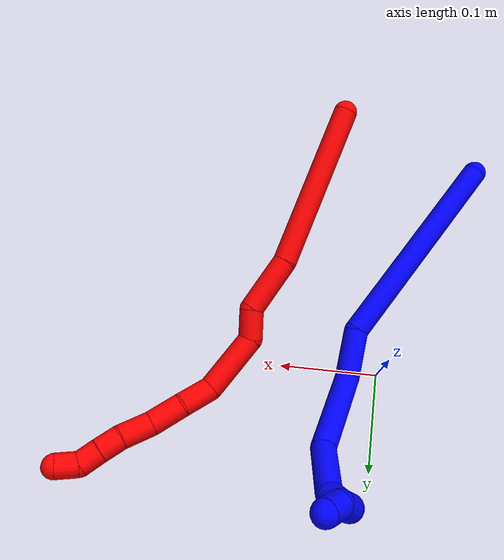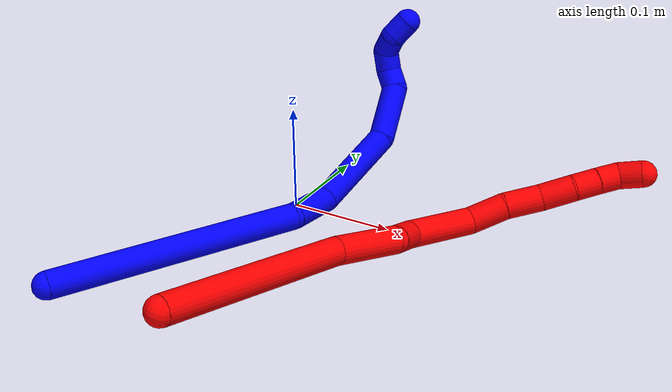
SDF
<sdf version="1.7">
 <world name="default">
  <plugin name="TubeGeneratorPlugin" filename="libtube_generator_plugin.so"/>
  <model name="photoneo_s_sensor">
   <static>1</static>
   <pose>0 0 2 1.57079 1.57079 3.14159</pose>
   <link name="link">
    <inertial><mass>0.1</mass></inertial>
    <sensor name="sensor" type="depth">
     <update_rate>30</update_rate>
     <camera>
      <horizontal_fov>1.22</horizontal_fov>
      <image><width>1920</width><height>1200</height><format>B8G8R8</format></image>
      <clip><near>0.1</near><far>4</far></clip>
      <depth_camera><output>points</output></depth_camera>
     </camera>
     <plugin name="camera_plugin" filename="libgazebo_ros_depth_camera.so">
      <baseline>0.2</baseline>
      <alwaysOn>1</alwaysOn>
      <updateRate>0.0</updateRate>
      <cameraName>camera_ir</cameraName>
      <imageTopicName>/camera/color/image_raw</imageTopicName>
      <cameraInfoTopicName>/camera/color/camera_info</cameraInfoTopicName>
      <depthImageTopicName>/camera/depth/image_raw</depthImageTopicName>
      <depthImageCameraInfoTopicName>/camera/depth/camera_info</depthImageCameraInfoTopicName>
      <pointCloudTopicName>/camera/depth/points</pointCloudTopicName>
      <frameName>fr_optical</frameName>
      <pointCloudCutoff>0.1</pointCloudCutoff>
      <pointCloudCutoffMax>2.0</pointCloudCutoffMax>
      <distortionK1>0</distortionK1>
      <distortionK2>0</distortionK2>
      <distortionK3>0</distortionK3>
      <distortionT1>0</distortionT1>
      <distortionT2>0</distortionT2>
      <CxPrime>0</CxPrime>
      <Cx>0</Cx>
      <Cy>0</Cy>
      <focalLength>0</focalLength>
      <hackBaseline>0</hackBaseline>
     </plugin>
    </sensor>
   </link>
  </model>
  <gravity>0 0 -9.8</gravity>
  <magnetic_field>6e-06 2.3e-05 -4.2e-05</magnetic_field>
  <atmosphere type="adiabatic"/>
  <physics name="default_physics" default="0" type="ode">
   <max_step_size>0.003</max_step_size>
   <real_time_factor>1</real_time_factor>
   <real_time_update_rate>1000</real_time_update_rate>
   <max_contacts>10000</max_contacts>
   <ode>
    <solver>
     <type>quick</type>
     <iters>100</iters>
     <sor>1.3</sor>
     <use_dynamic_moi_rescaling>0</use_dynamic_moi_rescaling>
    </solver>
    <constraints>
     <contact_max_correcting_vel>0</contact_max_correcting_vel>
     <contact_surface_layer>0.001</contact_surface_layer>
     <cfm>0</cfm>
     <erp>0.2</erp>
    </constraints>
   </ode>
  </physics>
  <scene><ambient>0.4 0.4 0.4 1</ambient><background>0.7 0.7 0.7 1</background><shadows>0</shadows></scene>
  <audio><device>default</device></audio>
  <spherical_coordinates>
   <surface_model>EARTH_WGS84</surface_model>
   <latitude_deg>0</latitude_deg>
   <longitude_deg>0</longitude_deg>
   <elevation>0</elevation>
   <heading_deg>0</heading_deg>
  </spherical_coordinates>
  <model name="bin">
   <static>1</static>
   <link name="bottom">
    <collision name="collision-bottom">
     <pose>0 0 -0.01 0 -0 0</pose>
     <geometry><box><size>0.8 0.6 0.02</size></box></geometry>
     <surface>
      <friction><ode><mu>100</mu><mu2>100</mu2></ode></friction>
      <contact><collide_bitmask>65535</collide_bitmask></contact>
     </surface>
    </collision>
   </link>
   <link name="west_wall">
    <collision name="collision-west_wall">
     <pose>-0.41 0 0.1 0 -0 0</pose>
     <geometry><box><size>0.02 0.6 0.2</size></box></geometry>
     <surface>
      <friction><ode><mu>100</mu><mu2>100</mu2></ode></friction>
      <contact><collide_bitmask>65535</collide_bitmask></contact>
     </surface>
    </collision>
   </link>
   <link name="east_wall">
    <collision name="collision-east_wall">
     <pose>0.41 0 0.1 0 -0 0</pose>
     <geometry><box><size>0.02 0.6 0.2</size></box></geometry>
     <surface>
      <friction><ode><mu>100</mu><mu2>100</mu2></ode></friction>
      <contact><collide_bitmask>65535</collide_bitmask></contact>
     </surface>
    </collision>
   </link>
   <link name="south_wall">
    <collision name="collision-south_wall">
     <pose>0 -0.31 0.1 0 -0 0</pose>
     <geometry><box><size>0.8 0.02 0.2</size></box></geometry>
     <surface>
      <friction><ode><mu>100</mu><mu2>100</mu2></ode></friction>
      <contact><collide_bitmask>65535</collide_bitmask></contact>
     </surface>
    </collision>
   </link>
   <link name="north_wall">
    <collision name="collision-north_wall">
     <pose>0 0.31 0.1 0 -0 0</pose>
     <geometry><box><size>0.8 0.02 0.2</size></box></geometry>
     <surface>
      <friction><ode><mu>100</mu><mu2>100</mu2></ode></friction>
      <contact><collide_bitmask>65535</collide_bitmask></contact>
     </surface>
    </collision>
   </link>
  </model>
  <model name="1">
   <static>0</static>
   <link name="1">
    <collision name="collision-cylinder-e_1_1_4">
     <pose>0.076165 0.053523 0.064933 -0.689371 0.735634 -0.274952</pose>
     <geometry><cylinder><radius>0.0125</radius><length>0.226999</length></cylinder></geometry>
     <surface>
      <friction><ode><mu>1.16</mu><mu2>1.16</mu2><slip1>0</slip1><slip2>0</slip2></ode></friction>
      <contact><ode><kp>1e+06</kp><kd>1</kd><max_vel>0</max_vel><min_depth>0.001</min_depth></ode></contact>
     </surface>
    </collision>
    <visual name="visual-cylinder-e_1_1_4">
     <pose>0.076165 0.053523 0.064933 -0.689371 0.735634 -0.274952</pose>
     <geometry><cylinder><radius>0.0125</radius><length>0.226999</length></cylinder></geometry>
     <material><ambient>0 0 1 1</ambient></material>
    </visual>
    <collision name="collision-cylinder-e_2_4_5">
     <pose>0.172823 0.120783 0.133889 -1.28595 0.961135 -0.744703</pose>
     <geometry><cylinder><radius>0.0125</radius><length>0.049994</length></cylinder></geometry>
     <surface>
      <friction><ode><mu>1.16</mu><mu2>1.16</mu2><slip1>0</slip1><slip2>0</slip2></ode></friction>
      <contact><ode><kp>1e+06</kp><kd>1</kd><max_vel>0</max_vel><min_depth>0.001</min_depth></ode></contact>
     </surface>
    </collision>
    <visual name="visual-cylinder-e_2_4_5">
     <pose>0.172823 0.120783 0.133889 -1.28595 0.961135 -0.744703</pose>
     <geometry><cylinder><radius>0.0125</radius><length>0.049994</length></cylinder></geometry>
     <material><ambient>0 0 1 1</ambient></material>
    </visual>
    <collision name="collision-cylinder-e_3_5_6">
     <pose>0.210866 0.171202 0.15242 -1.19415 0.41859 -0.286824</pose>
     <geometry><cylinder><radius>0.0125</radius><length>0.086351</length></cylinder></geometry>
     <surface>
      <friction><ode><mu>1.16</mu><mu2>1.16</mu2><slip1>0</slip1><slip2>0</slip2></ode></friction>
      <contact><ode><kp>1e+06</kp><kd>1</kd><max_vel>0</max_vel><min_depth>0.001</min_depth></ode></contact>
     </surface>
    </collision>
    <visual name="visual-cylinder-e_3_5_6">
     <pose>0.210866 0.171202 0.15242 -1.19415 0.41859 -0.286824</pose>
     <geometry><cylinder><radius>0.0125</radius><length>0.086351</length></cylinder></geometry>
     <material><ambient>0 0 1 1</ambient></material>
    </visual>
    <collision name="collision-cylinder-e_4_6_7">
     <pose>0.232267 0.235281 0.167088 -1.56501 0.139658 -0.138854</pose>
     <geometry><cylinder><radius>0.0125</radius><length>0.055332</length></cylinder></geometry>
     <surface>
      <friction><ode><mu>1.16</mu><mu2>1.16</mu2><slip1>0</slip1><slip2>0</slip2></ode></friction>
      <contact><ode><kp>1e+06</kp><kd>1</kd><max_vel>0</max_vel><min_depth>0.001</min_depth></ode></contact>
     </surface>
    </collision>
    <visual name="visual-cylinder-e_4_6_7">
     <pose>0.232267 0.235281 0.167088 -1.56501 0.139658 -0.138854</pose>
     <geometry><cylinder><radius>0.0125</radius><length>0.055332</length></cylinder></geometry>
     <material><ambient>0 0 1 1</ambient></material>
    </visual>
    <collision name="collision-cylinder-e_5_7_8">
     <pose>0.234425 0.271552 0.162855 -2.03023 -0.169337 0.271678</pose>
     <geometry><cylinder><radius>0.0125</radius><length>0.020092</length></cylinder></geometry>
     <surface>
      <friction><ode><mu>1.16</mu><mu2>1.16</mu2><slip1>0</slip1><slip2>0</slip2></ode></friction>
      <contact><ode><kp>1e+06</kp><kd>1</kd><max_vel>0</max_vel><min_depth>0.001</min_depth></ode></contact>
     </surface>
    </collision>
    <visual name="visual-cylinder-e_5_7_8">
     <pose>0.234425 0.271552 0.162855 -2.03023 -0.169337 0.271678</pose>
     <geometry><cylinder><radius>0.0125</radius><length>0.020092</length></cylinder></geometry>
     <material><ambient>0 0 1 1</ambient></material>
    </visual>
    <collision name="collision-cylinder-e_6_8_9">
     <pose>0.227202 0.288868 0.157387 -1.69776 -0.57628 0.649425</pose>
     <geometry><cylinder><radius>0.0125</radius><length>0.020298</length></cylinder></geometry>
     <surface>
      <friction><ode><mu>1.16</mu><mu2>1.16</mu2><slip1>0</slip1><slip2>0</slip2></ode></friction>
      <contact><ode><kp>1e+06</kp><kd>1</kd><max_vel>0</max_vel><min_depth>0.001</min_depth></ode></contact>
     </surface>
    </collision>
    <visual name="visual-cylinder-e_6_8_9">
     <pose>0.227202 0.288868 0.157387 -1.69776 -0.57628 0.649425</pose>
     <geometry><cylinder><radius>0.0125</radius><length>0.020298</length></cylinder></geometry>
     <material><ambient>0 0 1 1</ambient></material>
    </visual>
    <collision name="collision-cylinder-e_7_9_10">
     <pose>0.215087 0.30265 0.161915 -0.761179 -0.704774 0.292163</pose>
     <geometry><cylinder><radius>0.0125</radius><length>0.020329</length></cylinder></geometry>
     <surface>
      <friction><ode><mu>1.16</mu><mu2>1.16</mu2><slip1>0</slip1><slip2>0</slip2></ode></friction>
      <contact><ode><kp>1e+06</kp><kd>1</kd><max_vel>0</max_vel><min_depth>0.001</min_depth></ode></contact>
     </surface>
    </collision>
    <visual name="visual-cylinder-e_7_9_10">
     <pose>0.215087 0.30265 0.161915 -0.761179 -0.704774 0.292163</pose>
     <geometry><cylinder><radius>0.0125</radius><length>0.020329</length></cylinder></geometry>
     <material><ambient>0 0 1 1</ambient></material>
    </visual>
    <collision name="collision-cylinder-e_8_10_2">
     <pose>0.206892 0.315442 0.174453 -0.821443 -0.156921 0.068451</pose>
     <geometry><cylinder><radius>0.0125</radius><length>0.020606</length></cylinder></geometry>
     <surface>
      <friction><ode><mu>1.16</mu><mu2>1.16</mu2><slip1>0</slip1><slip2>0</slip2></ode></friction>
      <contact><ode><kp>1e+06</kp><kd>1</kd><max_vel>0</max_vel><min_depth>0.001</min_depth></ode></contact>
     </surface>
    </collision>
    <visual name="visual-cylinder-e_8_10_2">
     <pose>0.206892 0.315442 0.174453 -0.821443 -0.156921 0.068451</pose>
     <geometry><cylinder><radius>0.0125</radius><length>0.020606</length></cylinder></geometry>
     <material><ambient>0 0 1 1</ambient></material>
    </visual>
    <collision name="collision-sphere-2">
     <pose>0.205282 0.322892 0.181385 0 -0 0</pose>
     <geometry><sphere><radius>0.0125</radius></sphere></geometry>
     <surface>
      <friction><ode><mu>1.16</mu><mu2>1.16</mu2><slip1>0</slip1><slip2>0</slip2></ode></friction>
      <contact><ode><kp>1e+06</kp><kd>1</kd><max_vel>0</max_vel><min_depth>0.001</min_depth></ode></contact>
     </surface>
    </collision>
    <visual name="visual-sphere-2">
     <pose>0.205282 0.322892 0.181385 0 -0 0</pose>
     <geometry><sphere><radius>0.0125</radius></sphere></geometry>
     <material><ambient>0 0 1 1</ambient></material>
    </visual>
    <collision name="collision-sphere-10">
     <pose>0.208502 0.307991 0.167521 0 -0 0</pose>
     <geometry><sphere><radius>0.0125</radius></sphere></geometry>
     <surface>
      <friction><ode><mu>1.16</mu><mu2>1.16</mu2><slip1>0</slip1><slip2>0</slip2></ode></friction>
      <contact><ode><kp>1e+06</kp><kd>1</kd><max_vel>0</max_vel><min_depth>0.001</min_depth></ode></contact>
     </surface>
    </collision>
    <visual name="visual-sphere-10">
     <pose>0.208502 0.307991 0.167521 0 -0 0</pose>
     <geometry><sphere><radius>0.0125</radius></sphere></geometry>
     <material><ambient>0 0 1 1</ambient></material>
    </visual>
    <collision name="collision-sphere-9">
     <pose>0.221672 0.29731 0.156309 0 -0 0</pose>
     <geometry><sphere><radius>0.0125</radius></sphere></geometry>
     <surface>
      <friction><ode><mu>1.16</mu><mu2>1.16</mu2><slip1>0</slip1><slip2>0</slip2></ode></friction>
      <contact><ode><kp>1e+06</kp><kd>1</kd><max_vel>0</max_vel><min_depth>0.001</min_depth></ode></contact>
     </surface>
    </collision>
    <visual name="visual-sphere-9">
     <pose>0.221672 0.29731 0.156309 0 -0 0</pose>
     <geometry><sphere><radius>0.0125</radius></sphere></geometry>
     <material><ambient>0 0 1 1</ambient></material>
    </visual>
    <collision name="collision-sphere-4">
     <pose>0.152329 0.107046 0.129867 0 -0 0</pose>
     <geometry><sphere><radius>0.0125</radius></sphere></geometry>
     <surface>
      <friction><ode><mu>1.16</mu><mu2>1.16</mu2><slip1>0</slip1><slip2>0</slip2></ode></friction>
      <contact><ode><kp>1e+06</kp><kd>1</kd><max_vel>0</max_vel><min_depth>0.001</min_depth></ode></contact>
     </surface>
    </collision>
    <visual name="visual-sphere-4">
     <pose>0.152329 0.107046 0.129867 0 -0 0</pose>
     <geometry><sphere><radius>0.0125</radius></sphere></geometry>
     <material><ambient>0 0 1 1</ambient></material>
    </visual>
    <collision name="collision-sphere-1">
     <geometry><sphere><radius>0.0125</radius></sphere></geometry>
     <surface>
      <friction><ode><mu>1.16</mu><mu2>1.16</mu2><slip1>0</slip1><slip2>0</slip2></ode></friction>
      <contact><ode><kp>1e+06</kp><kd>1</kd><max_vel>0</max_vel><min_depth>0.001</min_depth></ode></contact>
     </surface>
    </collision>
    <visual name="visual-sphere-1">
     <geometry><sphere><radius>0.0125</radius></sphere></geometry>
     <material><ambient>0 0 1 1</ambient></material>
    </visual>
    <collision name="collision-sphere-8">
     <pose>0.232732 0.280427 0.158464 0 -0 0</pose>
     <geometry><sphere><radius>0.0125</radius></sphere></geometry>
     <surface>
      <friction><ode><mu>1.16</mu><mu2>1.16</mu2><slip1>0</slip1><slip2>0</slip2></ode></friction>
      <contact><ode><kp>1e+06</kp><kd>1</kd><max_vel>0</max_vel><min_depth>0.001</min_depth></ode></contact>
     </surface>
    </collision>
    <visual name="visual-sphere-8">
     <pose>0.232732 0.280427 0.158464 0 -0 0</pose>
     <geometry><sphere><radius>0.0125</radius></sphere></geometry>
     <material><ambient>0 0 1 1</ambient></material>
    </visual>
    <collision name="collision-sphere-5">
     <pose>0.193317 0.134519 0.137911 0 -0 0</pose>
     <geometry><sphere><radius>0.0125</radius></sphere></geometry>
     <surface>
      <friction><ode><mu>1.16</mu><mu2>1.16</mu2><slip1>0</slip1><slip2>0</slip2></ode></friction>
      <contact><ode><kp>1e+06</kp><kd>1</kd><max_vel>0</max_vel><min_depth>0.001</min_depth></ode></contact>
     </surface>
    </collision>
    <visual name="visual-sphere-5">
     <pose>0.193317 0.134519 0.137911 0 -0 0</pose>
     <geometry><sphere><radius>0.0125</radius></sphere></geometry>
     <material><ambient>0 0 1 1</ambient></material>
    </visual>
    <collision name="collision-sphere-6">
     <pose>0.228416 0.207885 0.166929 0 -0 0</pose>
     <geometry><sphere><radius>0.0125</radius></sphere></geometry>
     <surface>
      <friction><ode><mu>1.16</mu><mu2>1.16</mu2><slip1>0</slip1><slip2>0</slip2></ode></friction>
      <contact><ode><kp>1e+06</kp><kd>1</kd><max_vel>0</max_vel><min_depth>0.001</min_depth></ode></contact>
     </surface>
    </collision>
    <visual name="visual-sphere-6">
     <pose>0.228416 0.207885 0.166929 0 -0 0</pose>
     <geometry><sphere><radius>0.0125</radius></sphere></geometry>
     <material><ambient>0 0 1 1</ambient></material>
    </visual>
    <collision name="collision-sphere-7">
     <pose>0.236118 0.262677 0.167246 0 -0 0</pose>
     <geometry><sphere><radius>0.0125</radius></sphere></geometry>
     <surface>
      <friction><ode><mu>1.16</mu><mu2>1.16</mu2><slip1>0</slip1><slip2>0</slip2></ode></friction>
      <contact><ode><kp>1e+06</kp><kd>1</kd><max_vel>0</max_vel><min_depth>0.001</min_depth></ode></contact>
     </surface>
    </collision>
    <visual name="visual-sphere-7">
     <pose>0.236118 0.262677 0.167246 0 -0 0</pose>
     <geometry><sphere><radius>0.0125</radius></sphere></geometry>
     <material><ambient>0 0 1 1</ambient></material>
    </visual>
    <inertial>
     <pose>0.149894 0.139924 0.114387 0 -0 0</pose>
     <mass>0.5</mass>
     <inertia>
      <ixx>0.000576</ixx>
      <ixy>0</ixy>
      <ixz>0</ixz>
      <iyy>0.000689</iyy>
      <iyz>0</iyz>
      <izz>-0.001219</izz>
     </inertia>
    </inertial>
   </link>
   <pose>-0.092726 -0.236659 0.012411 1.43191 0.66978 1.55109</pose>
  </model>
  <model name="2">
   <static>0</static>
   <link name="2">
    <collision name="collision-cylinder-e_1_1_4">
     <pose>0.050869 0.050786 0.049806 -0.795141 0.620804 -0.267792</pose>
     <geometry><cylinder><radius>0.0125</radius><length>0.174901</length></cylinder></geometry>
     <surface>
      <friction><ode><mu>1.16</mu><mu2>1.16</mu2><slip1>0</slip1><slip2>0</slip2></ode></friction>
      <contact><ode><kp>1e+06</kp><kd>1</kd><max_vel>0</max_vel><min_depth>0.001</min_depth></ode></contact>
     </surface>
    </collision>
    <visual name="visual-cylinder-e_1_1_4">
     <pose>0.050869 0.050786 0.049806 -0.795141 0.620804 -0.267792</pose>
     <geometry><cylinder><radius>0.0125</radius><length>0.174901</length></cylinder></geometry>
     <material><ambient>1 0 0 1</ambient></material>
    </visual>
    <collision name="collision-cylinder-e_2_4_5">
     <pose>0.114773 0.117299 0.12153 -0.622378 0.450126 -0.147008</pose>
     <geometry><cylinder><radius>0.0125</radius><length>0.05992</length></cylinder></geometry>
     <surface>
      <friction><ode><mu>1.16</mu><mu2>1.16</mu2><slip1>0</slip1><slip2>0</slip2></ode></friction>
      <contact><ode><kp>1e+06</kp><kd>1</kd><max_vel>0</max_vel><min_depth>0.001</min_depth></ode></contact>
     </surface>
    </collision>
    <visual name="visual-cylinder-e_2_4_5">
     <pose>0.114773 0.117299 0.12153 -0.622378 0.450126 -0.147008</pose>
     <geometry><cylinder><radius>0.0125</radius><length>0.05992</length></cylinder></geometry>
     <material><ambient>1 0 0 1</ambient></material>
    </visual>
    <collision name="collision-cylinder-e_3_5_6">
     <pose>0.141253 0.140047 0.14863 -0.935052 0.995049 -0.535215</pose>
     <geometry><cylinder><radius>0.0125</radius><length>0.032059</length></cylinder></geometry>
     <surface>
      <friction><ode><mu>1.16</mu><mu2>1.16</mu2><slip1>0</slip1><slip2>0</slip2></ode></friction>
      <contact><ode><kp>1e+06</kp><kd>1</kd><max_vel>0</max_vel><min_depth>0.001</min_depth></ode></contact>
     </surface>
    </collision>
    <visual name="visual-cylinder-e_3_5_6">
     <pose>0.141253 0.140047 0.14863 -0.935052 0.995049 -0.535215</pose>
     <geometry><cylinder><radius>0.0125</radius><length>0.032059</length></cylinder></geometry>
     <material><ambient>1 0 0 1</ambient></material>
    </visual>
    <collision name="collision-cylinder-e_4_6_7">
     <pose>0.165947 0.165245 0.178313 -0.638242 0.353251 -0.117812</pose>
     <geometry><cylinder><radius>0.0125</radius><length>0.065028</length></cylinder></geometry>
     <surface>
      <friction><ode><mu>1.16</mu><mu2>1.16</mu2><slip1>0</slip1><slip2>0</slip2></ode></friction>
      <contact><ode><kp>1e+06</kp><kd>1</kd><max_vel>0</max_vel><min_depth>0.001</min_depth></ode></contact>
     </surface>
    </collision>
    <visual name="visual-cylinder-e_4_6_7">
     <pose>0.165947 0.165245 0.178313 -0.638242 0.353251 -0.117812</pose>
     <geometry><cylinder><radius>0.0125</radius><length>0.065028</length></cylinder></geometry>
     <material><ambient>1 0 0 1</ambient></material>
    </visual>
    <collision name="collision-cylinder-e_5_7_8">
     <pose>0.174792 0.195035 0.215755 -0.731454 -0.137307 0.052653</pose>
     <geometry><cylinder><radius>0.0125</radius><length>0.035107</length></cylinder></geometry>
     <surface>
      <friction><ode><mu>1.16</mu><mu2>1.16</mu2><slip1>0</slip1><slip2>0</slip2></ode></friction>
      <contact><ode><kp>1e+06</kp><kd>1</kd><max_vel>0</max_vel><min_depth>0.001</min_depth></ode></contact>
     </surface>
    </collision>
    <visual name="visual-cylinder-e_5_7_8">
     <pose>0.174792 0.195035 0.215755 -0.731454 -0.137307 0.052653</pose>
     <geometry><cylinder><radius>0.0125</radius><length>0.035107</length></cylinder></geometry>
     <material><ambient>1 0 0 1</ambient></material>
    </visual>
    <collision name="collision-cylinder-e_6_8_9">
     <pose>0.171981 0.216052 0.243 -0.58151 -0.023875 0.007145</pose>
     <geometry><cylinder><radius>0.0125</radius><length>0.034246</length></cylinder></geometry>
     <surface>
      <friction><ode><mu>1.16</mu><mu2>1.16</mu2><slip1>0</slip1><slip2>0</slip2></ode></friction>
      <contact><ode><kp>1e+06</kp><kd>1</kd><max_vel>0</max_vel><min_depth>0.001</min_depth></ode></contact>
     </surface>
    </collision>
    <visual name="visual-cylinder-e_6_8_9">
     <pose>0.171981 0.216052 0.243 -0.58151 -0.023875 0.007145</pose>
     <geometry><cylinder><radius>0.0125</radius><length>0.034246</length></cylinder></geometry>
     <material><ambient>1 0 0 1</ambient></material>
    </visual>
    <collision name="collision-cylinder-e_7_9_10">
     <pose>0.168515 0.234368 0.270032 -0.610939 -0.194275 0.061437</pose>
     <geometry><cylinder><radius>0.0125</radius><length>0.031672</length></cylinder></geometry>
     <surface>
      <friction><ode><mu>1.16</mu><mu2>1.16</mu2><slip1>0</slip1><slip2>0</slip2></ode></friction>
      <contact><ode><kp>1e+06</kp><kd>1</kd><max_vel>0</max_vel><min_depth>0.001</min_depth></ode></contact>
     </surface>
    </collision>
    <visual name="visual-cylinder-e_7_9_10">
     <pose>0.168515 0.234368 0.270032 -0.610939 -0.194275 0.061437</pose>
     <geometry><cylinder><radius>0.0125</radius><length>0.031672</length></cylinder></geometry>
     <material><ambient>1 0 0 1</ambient></material>
    </visual>
    <collision name="collision-cylinder-e_8_10_11">
     <pose>0.165189 0.250002 0.29202 -0.627785 -0.023471 0.007619</pose>
     <geometry><cylinder><radius>0.0125</radius><length>0.02289</length></cylinder></geometry>
     <surface>
      <friction><ode><mu>1.16</mu><mu2>1.16</mu2><slip1>0</slip1><slip2>0</slip2></ode></friction>
      <contact><ode><kp>1e+06</kp><kd>1</kd><max_vel>0</max_vel><min_depth>0.001</min_depth></ode></contact>
     </surface>
    </collision>
    <visual name="visual-cylinder-e_8_10_11">
     <pose>0.165189 0.250002 0.29202 -0.627785 -0.023471 0.007619</pose>
     <geometry><cylinder><radius>0.0125</radius><length>0.02289</length></cylinder></geometry>
     <material><ambient>1 0 0 1</ambient></material>
    </visual>
    <collision name="collision-cylinder-e_9_11_12">
     <pose>0.165189 0.262923 0.310088 -0.613425 0.02496 -0.007905</pose>
     <geometry><cylinder><radius>0.0125</radius><length>0.021551</length></cylinder></geometry>
     <surface>
      <friction><ode><mu>1.16</mu><mu2>1.16</mu2><slip1>0</slip1><slip2>0</slip2></ode></friction>
      <contact><ode><kp>1e+06</kp><kd>1</kd><max_vel>0</max_vel><min_depth>0.001</min_depth></ode></contact>
     </surface>
    </collision>
    <visual name="visual-cylinder-e_9_11_12">
     <pose>0.165189 0.262923 0.310088 -0.613425 0.02496 -0.007905</pose>
     <geometry><cylinder><radius>0.0125</radius><length>0.021551</length></cylinder></geometry>
     <material><ambient>1 0 0 1</ambient></material>
    </visual>
    <collision name="collision-cylinder-e_10_12_2">
     <pose>0.160629 0.272294 0.328623 -0.315026 -0.441001 0.071171</pose>
     <geometry><cylinder><radius>0.0125</radius><length>0.022625</length></cylinder></geometry>
     <surface>
      <friction><ode><mu>1.16</mu><mu2>1.16</mu2><slip1>0</slip1><slip2>0</slip2></ode></friction>
      <contact><ode><kp>1e+06</kp><kd>1</kd><max_vel>0</max_vel><min_depth>0.001</min_depth></ode></contact>
     </surface>
    </collision>
    <visual name="visual-cylinder-e_10_12_2">
     <pose>0.160629 0.272294 0.328623 -0.315026 -0.441001 0.071171</pose>
     <geometry><cylinder><radius>0.0125</radius><length>0.022625</length></cylinder></geometry>
     <material><ambient>1 0 0 1</ambient></material>
    </visual>
    <collision name="collision-sphere-2">
     <pose>0.155801 0.275464 0.33835 0 -0 0</pose>
     <geometry><sphere><radius>0.0125</radius></sphere></geometry>
     <surface>
      <friction><ode><mu>1.16</mu><mu2>1.16</mu2><slip1>0</slip1><slip2>0</slip2></ode></friction>
      <contact><ode><kp>1e+06</kp><kd>1</kd><max_vel>0</max_vel><min_depth>0.001</min_depth></ode></contact>
     </surface>
    </collision>
    <visual name="visual-sphere-2">
     <pose>0.155801 0.275464 0.33835 0 -0 0</pose>
     <geometry><sphere><radius>0.0125</radius></sphere></geometry>
     <material><ambient>1 0 0 1</ambient></material>
    </visual>
    <collision name="collision-sphere-12">
     <pose>0.165458 0.269125 0.318896 0 -0 0</pose>
     <geometry><sphere><radius>0.0125</radius></sphere></geometry>
     <surface>
      <friction><ode><mu>1.16</mu><mu2>1.16</mu2><slip1>0</slip1><slip2>0</slip2></ode></friction>
      <contact><ode><kp>1e+06</kp><kd>1</kd><max_vel>0</max_vel><min_depth>0.001</min_depth></ode></contact>
     </surface>
    </collision>
    <visual name="visual-sphere-12">
     <pose>0.165458 0.269125 0.318896 0 -0 0</pose>
     <geometry><sphere><radius>0.0125</radius></sphere></geometry>
     <material><ambient>1 0 0 1</ambient></material>
    </visual>
    <collision name="collision-sphere-11">
     <pose>0.16492 0.256722 0.30128 0 -0 0</pose>
     <geometry><sphere><radius>0.0125</radius></sphere></geometry>
     <surface>
      <friction><ode><mu>1.16</mu><mu2>1.16</mu2><slip1>0</slip1><slip2>0</slip2></ode></friction>
      <contact><ode><kp>1e+06</kp><kd>1</kd><max_vel>0</max_vel><min_depth>0.001</min_depth></ode></contact>
     </surface>
    </collision>
    <visual name="visual-sphere-11">
     <pose>0.16492 0.256722 0.30128 0 -0 0</pose>
     <geometry><sphere><radius>0.0125</radius></sphere></geometry>
     <material><ambient>1 0 0 1</ambient></material>
    </visual>
    <collision name="collision-sphere-10">
     <pose>0.165458 0.243281 0.28276 0 -0 0</pose>
     <geometry><sphere><radius>0.0125</radius></sphere></geometry>
     <surface>
      <friction><ode><mu>1.16</mu><mu2>1.16</mu2><slip1>0</slip1><slip2>0</slip2></ode></friction>
      <contact><ode><kp>1e+06</kp><kd>1</kd><max_vel>0</max_vel><min_depth>0.001</min_depth></ode></contact>
     </surface>
    </collision>
    <visual name="visual-sphere-10">
     <pose>0.165458 0.243281 0.28276 0 -0 0</pose>
     <geometry><sphere><radius>0.0125</radius></sphere></geometry>
     <material><ambient>1 0 0 1</ambient></material>
    </visual>
    <collision name="collision-sphere-9">
     <pose>0.171572 0.225455 0.257304 0 -0 0</pose>
     <geometry><sphere><radius>0.0125</radius></sphere></geometry>
     <surface>
      <friction><ode><mu>1.16</mu><mu2>1.16</mu2><slip1>0</slip1><slip2>0</slip2></ode></friction>
      <contact><ode><kp>1e+06</kp><kd>1</kd><max_vel>0</max_vel><min_depth>0.001</min_depth></ode></contact>
     </surface>
    </collision>
    <visual name="visual-sphere-9">
     <pose>0.171572 0.225455 0.257304 0 -0 0</pose>
     <geometry><sphere><radius>0.0125</radius></sphere></geometry>
     <material><ambient>1 0 0 1</ambient></material>
    </visual>
    <collision name="collision-sphere-4">
     <pose>0.101738 0.101573 0.099613 0 -0 0</pose>
     <geometry><sphere><radius>0.0125</radius></sphere></geometry>
     <surface>
      <friction><ode><mu>1.16</mu><mu2>1.16</mu2><slip1>0</slip1><slip2>0</slip2></ode></friction>
      <contact><ode><kp>1e+06</kp><kd>1</kd><max_vel>0</max_vel><min_depth>0.001</min_depth></ode></contact>
     </surface>
    </collision>
    <visual name="visual-sphere-4">
     <pose>0.101738 0.101573 0.099613 0 -0 0</pose>
     <geometry><sphere><radius>0.0125</radius></sphere></geometry>
     <material><ambient>1 0 0 1</ambient></material>
    </visual>
    <collision name="collision-sphere-1">
     <geometry><sphere><radius>0.0125</radius></sphere></geometry>
     <surface>
      <friction><ode><mu>1.16</mu><mu2>1.16</mu2><slip1>0</slip1><slip2>0</slip2></ode></friction>
      <contact><ode><kp>1e+06</kp><kd>1</kd><max_vel>0</max_vel><min_depth>0.001</min_depth></ode></contact>
     </surface>
    </collision>
    <visual name="visual-sphere-1">
     <geometry><sphere><radius>0.0125</radius></sphere></geometry>
     <material><ambient>1 0 0 1</ambient></material>
    </visual>
    <collision name="collision-sphere-8">
     <pose>0.17239 0.206649 0.228695 0 -0 0</pose>
     <geometry><sphere><radius>0.0125</radius></sphere></geometry>
     <surface>
      <friction><ode><mu>1.16</mu><mu2>1.16</mu2><slip1>0</slip1><slip2>0</slip2></ode></friction>
      <contact><ode><kp>1e+06</kp><kd>1</kd><max_vel>0</max_vel><min_depth>0.001</min_depth></ode></contact>
     </surface>
    </collision>
    <visual name="visual-sphere-8">
     <pose>0.17239 0.206649 0.228695 0 -0 0</pose>
     <geometry><sphere><radius>0.0125</radius></sphere></geometry>
     <material><ambient>1 0 0 1</ambient></material>
    </visual>
    <collision name="collision-sphere-5">
     <pose>0.127808 0.133025 0.143448 0 -0 0</pose>
     <geometry><sphere><radius>0.0125</radius></sphere></geometry>
     <surface>
      <friction><ode><mu>1.16</mu><mu2>1.16</mu2><slip1>0</slip1><slip2>0</slip2></ode></friction>
      <contact><ode><kp>1e+06</kp><kd>1</kd><max_vel>0</max_vel><min_depth>0.001</min_depth></ode></contact>
     </surface>
    </collision>
    <visual name="visual-sphere-5">
     <pose>0.127808 0.133025 0.143448 0 -0 0</pose>
     <geometry><sphere><radius>0.0125</radius></sphere></geometry>
     <material><ambient>1 0 0 1</ambient></material>
    </visual>
    <collision name="collision-sphere-6">
     <pose>0.154698 0.147069 0.153812 0 -0 0</pose>
     <geometry><sphere><radius>0.0125</radius></sphere></geometry>
     <surface>
      <friction><ode><mu>1.16</mu><mu2>1.16</mu2><slip1>0</slip1><slip2>0</slip2></ode></friction>
      <contact><ode><kp>1e+06</kp><kd>1</kd><max_vel>0</max_vel><min_depth>0.001</min_depth></ode></contact>
     </surface>
    </collision>
    <visual name="visual-sphere-6">
     <pose>0.154698 0.147069 0.153812 0 -0 0</pose>
     <geometry><sphere><radius>0.0125</radius></sphere></geometry>
     <material><ambient>1 0 0 1</ambient></material>
    </visual>
    <collision name="collision-sphere-7">
     <pose>0.177195 0.18342 0.202814 0 -0 0</pose>
     <geometry><sphere><radius>0.0125</radius></sphere></geometry>
     <surface>
      <friction><ode><mu>1.16</mu><mu2>1.16</mu2><slip1>0</slip1><slip2>0</slip2></ode></friction>
      <contact><ode><kp>1e+06</kp><kd>1</kd><max_vel>0</max_vel><min_depth>0.001</min_depth></ode></contact>
     </surface>
    </collision>
    <visual name="visual-sphere-7">
     <pose>0.177195 0.18342 0.202814 0 -0 0</pose>
     <geometry><sphere><radius>0.0125</radius></sphere></geometry>
     <material><ambient>1 0 0 1</ambient></material>
    </visual>
    <inertial>
     <pose>0.118865 0.14073 0.155209 0 -0 0</pose>
     <mass>0.5</mass>
     <inertia>
      <ixx>0.000326</ixx>
      <ixy>0</ixy>
      <ixz>0</ixz>
      <iyy>0.00033</iyy>
      <iyz>0</iyz>
      <izz>-0.000556</izz>
     </inertia>
    </inertial>
   </link>
   <pose>0.058675 -0.270351 0.057805 1.95723 0.714219 2.14444</pose>
  </model>
 </world>
</sdf>
